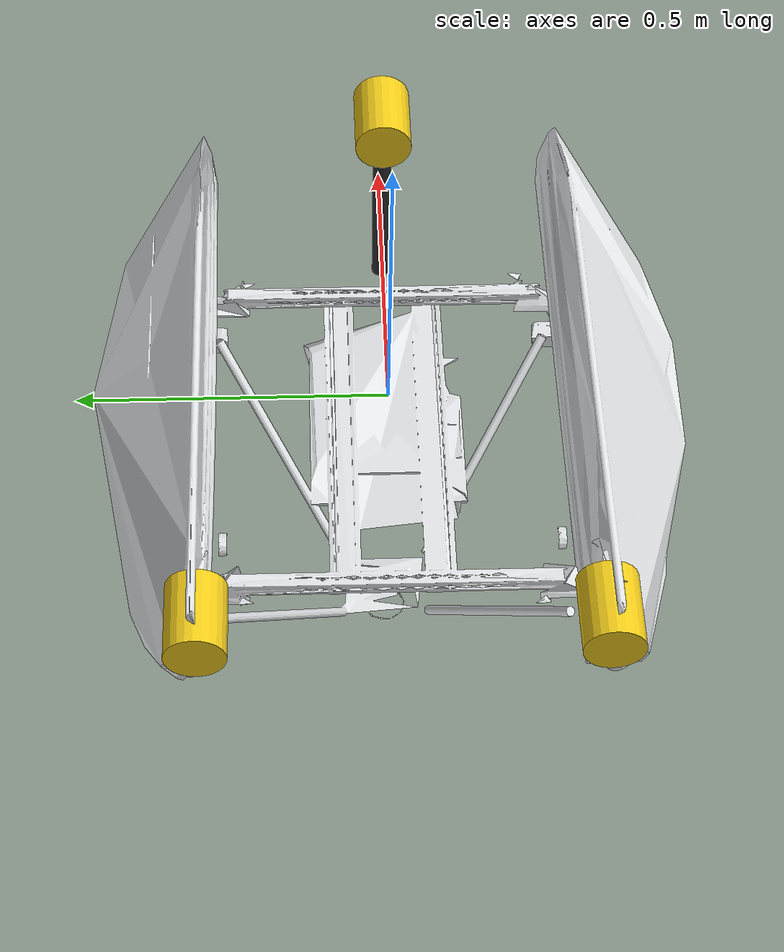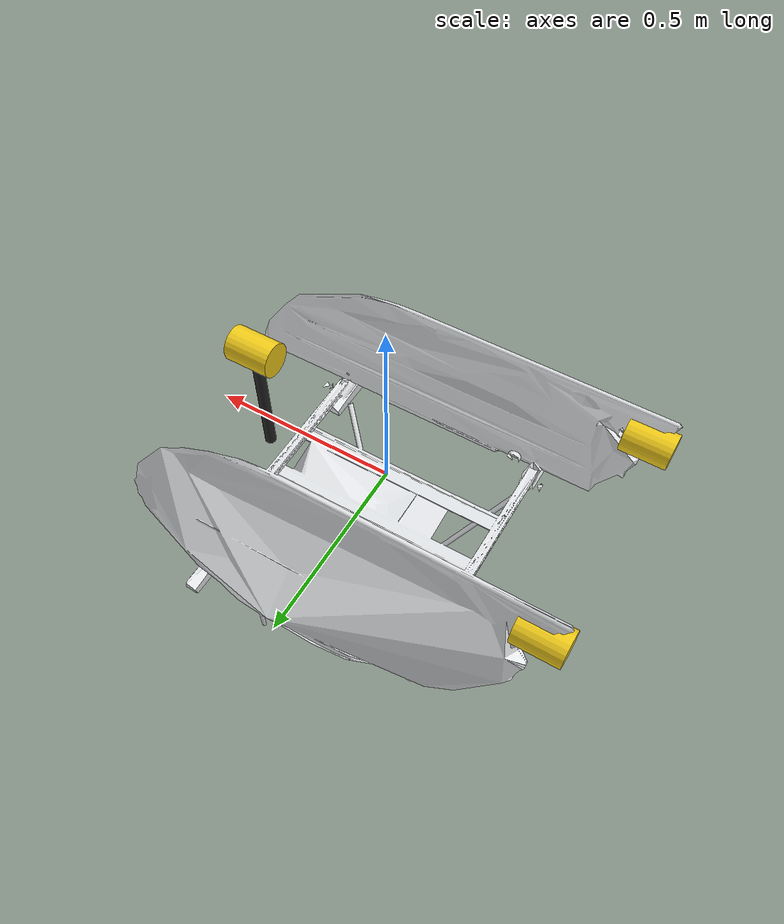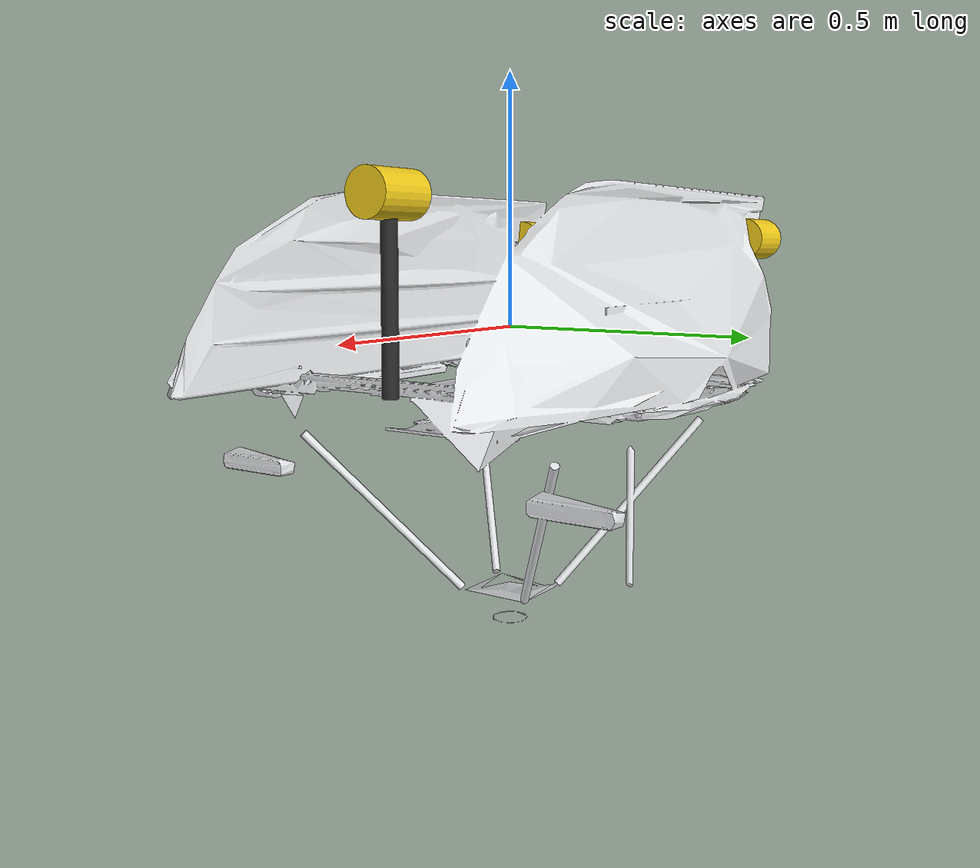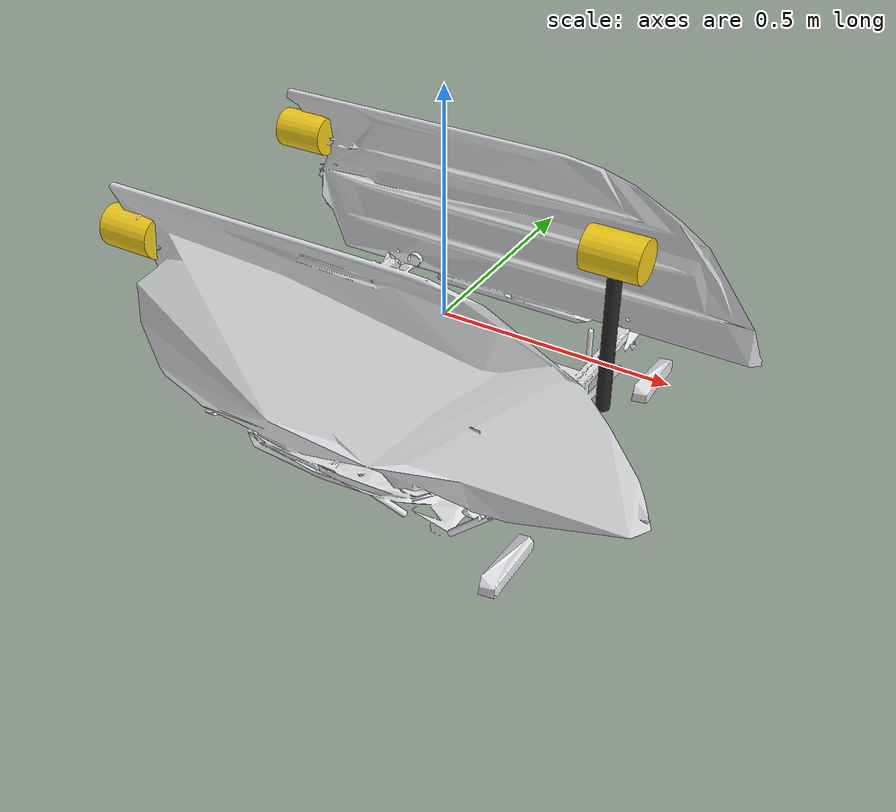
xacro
<?xml version="1.0"?>
<robot xmlns:xacro="http://www.ros.org/wiki/xacro" name="microampere">

    <xacro:property name="hull_length" value="1.2" />
    <xacro:property name="hull_width" value="0.2" />
    <xacro:property name="hull_height" value="0.376" />  <!-- hull CAD -->
    <xacro:property name="hull_offset" value="0.374" />   <!-- hull centerline distance from boat centerline -->
    <xacro:property name="draft" value="0.274" />       <!-- hull depth below waterline at 30.2 kg (hull CAD) -->
    <xacro:property name="azimuth_depth" value="0.248" />  <!-- azimuth below waterline (Microampere team) -->
    <xacro:property name="stern_thruster_depth" value="0.177" />  <!-- drawing BR-101447, must match vessel.yaml -->
    <xacro:property name="stern_thruster_y" value="0.29" />       <!-- Microampere team sketch, must match vessel.yaml -->
    <xacro:property name="azimuth_x" value="0.37" />              <!-- Microampere team sketch, must match vessel.yaml -->

    <material name="hull_blue"><color rgba="0.20 0.40 0.80 1.0" /></material>
    <material name="deck_grey"><color rgba="0.55 0.58 0.60 1.0" /></material>
    <material name="thruster_yellow"><color rgba="0.95 0.80 0.10 1.0" /></material>
    <material name="dark"><color rgba="0.15 0.15 0.15 1.0" /></material>

    <material name="hull_white"><color rgba="0.88 0.89 0.90 1.0" /></material>

    <link name="base_link">
        <visual name="microampere_cad">
            <origin xyz="0 0 ${hull_height - draft}" rpy="0 0 0" />
            <geometry><mesh filename="package://cybership_description/meshes/microampere/microampere.stl" /></geometry>
            <material name="hull_white" />
        </visual>

        <!-- Bow azimuth: vertical shaft + thruster pod -->
        <visual name="azimuth_shaft">
            <origin xyz="${azimuth_x} 0 ${(hull_height - draft - azimuth_depth) / 2}" rpy="0 0 0" />
            <geometry><cylinder radius="0.015" length="${hull_height - draft + azimuth_depth}" /></geometry>
            <material name="dark" />
        </visual>
        <visual name="azimuth_pod">
            <origin xyz="${azimuth_x} 0 ${-azimuth_depth}" rpy="0 1.5708 0" />
            <geometry><cylinder radius="0.045" length="0.12" /></geometry>
            <material name="thruster_yellow" />
        </visual>

        <!-- Stern thrusters, one under each hull -->
        <visual name="stern_port_thruster">
            <origin xyz="-0.55 ${stern_thruster_y} ${-stern_thruster_depth}" rpy="0 1.5708 0" />
            <geometry><cylinder radius="0.045" length="0.12" /></geometry>
            <material name="thruster_yellow" />
        </visual>
        <visual name="stern_starboard_thruster">
            <origin xyz="-0.55 ${-stern_thruster_y} ${-stern_thruster_depth}" rpy="0 1.5708 0" />
            <geometry><cylinder radius="0.045" length="0.12" /></geometry>
            <material name="thruster_yellow" />
        </visual>

    </link>

    <link name="base_link_ned"/>
    <joint name="base_link_to_ned" type="fixed">
        <child link="base_link"/>
        <parent link="base_link_ned"/>
        <origin xyz="0 0 0" rpy="-3.1415926 0 0.0"/>
    </joint>

    <!-- Sensor frames (NED) -->
    <link name="imu_link"/>
    <joint name="imu_joint" type="fixed">
        <parent link="base_link_ned"/>
        <child link="imu_link"/>
        <origin xyz="-0.05 0 ${-(hull_height - draft + 0.10)}" rpy="0 0 0"/>
    </joint>

    <link name="gnss_link"/>
    <joint name="gnss_joint" type="fixed">
        <parent link="base_link_ned"/>
        <child link="gnss_link"/>
        <origin xyz="-0.2 0 ${-(hull_height - draft + 0.43)}" rpy="0 0 0"/>
    </joint>

    <!-- Thruster frames (NED). Positions must match vessel.yaml. -->
    <xacro:macro name="thruster" params="thruster_name origin_xyz origin_rpy">
        <link name="${thruster_name}_link" />
        <joint name="${thruster_name}_joint" type="fixed">
            <parent link="base_link_ned" />
            <child link="${thruster_name}_link" />
            <origin xyz="${origin_xyz}" rpy="${origin_rpy}" />
        </joint>
    </xacro:macro>

    <xacro:thruster thruster_name="stern_port_thruster"      origin_xyz="-0.55 ${-stern_thruster_y} ${stern_thruster_depth}" origin_rpy="0 0 0" />
    <xacro:thruster thruster_name="stern_starboard_thruster" origin_xyz="-0.55 ${stern_thruster_y} ${stern_thruster_depth}" origin_rpy="0 0 0" />
    <xacro:thruster thruster_name="bow_azimuth_thruster"     origin_xyz="${azimuth_x} 0 ${azimuth_depth}" origin_rpy="0 0 0" />

</robot>
